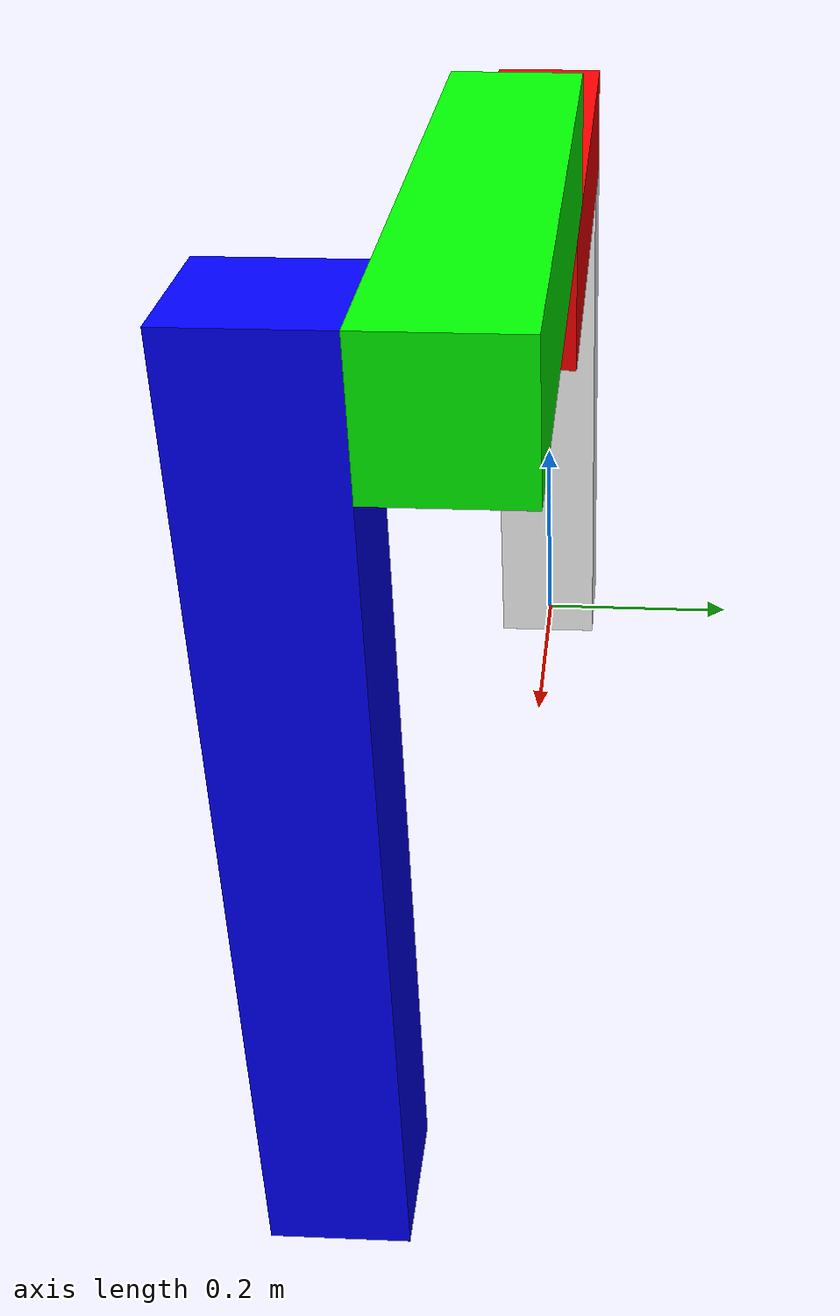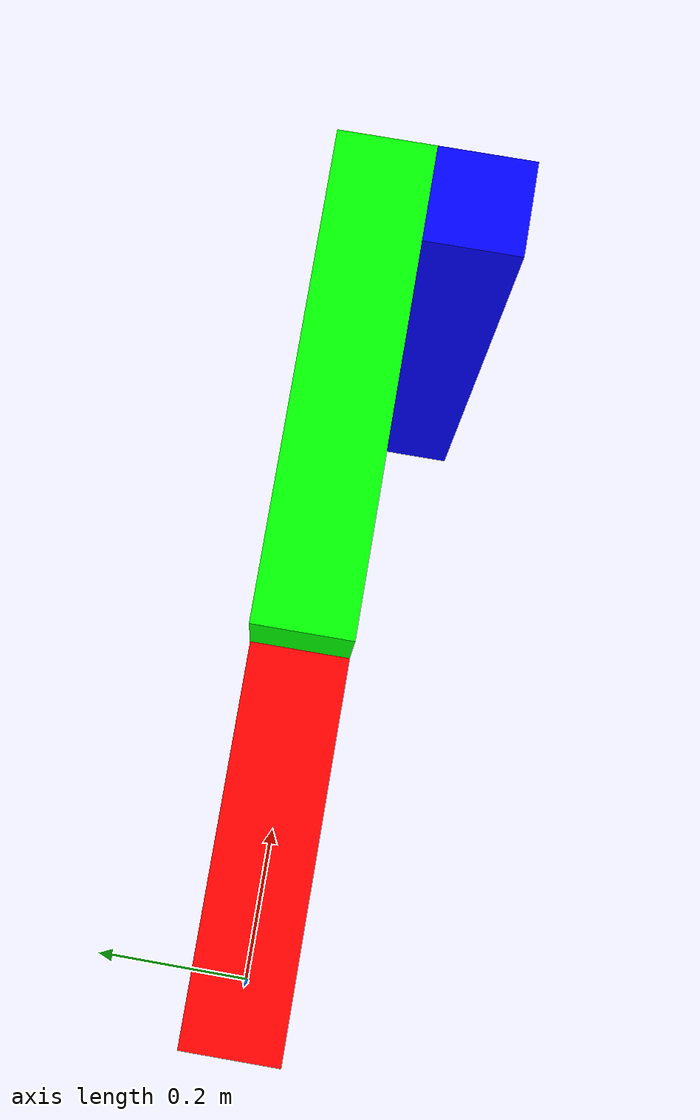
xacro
<?xml version="1.0"?>

<robot xmlns:xacro="http://www.ros.org/wiki/xacro" name="manipulator">

    <!-- VARIABLE DEFINITIONS -->
    <xacro:property name="link_0_length" value="0.5"/>
    <xacro:property name="link_1_length" value="0.5"/>
    <xacro:property name="link_2_length" value="0.5"/>
    <xacro:property name="link_3_length" value="${link_0_length + 2*link_width}"/>
    <xacro:property name="link_width" value="0.1"/>
    <xacro:property name="half_link_width" value="${link_width/2}"/>

    <!-- BASE LINK -->
    <link name="base_0"></link>

    <joint name="base_joint_0" type="fixed">
        <parent link="base_0"/>
        <child link="base_1"/>
    </joint>

    <link name="base_1">
        <visual name="base_1">
            <origin xyz="0.0 0.0 ${link_0_length/2}" rpy="0.0 0.0 0.0"/>
            <geometry>
                <box size="${link_width} ${link_width} ${link_0_length}"/>
            </geometry>
            <material name="white">
                <color rgba="1.0 1.0 1.0 1.0"/>
                <texture filename=""/>
            </material>
        </visual>
        <collision>
            <origin xyz="0.0 0.0 ${link_0_length/2}" rpy="0.0 0.0 0.0"/>
            <geometry>
                <box size="${link_width} ${link_width} ${link_0_length}"/>
            </geometry>
        </collision>
    </link>

    <joint name="joint_0" type="revolute">
        <origin xyz="0.0 0.0 ${link_0_length}" rpy="0.0 0.0 0.0"/>
        <parent link="base_1"/>
        <child link="link_1"/>
        <axis xyz="0.0 0.0 1.0"/>
        <limit lower="0.0" upper="0.0" effort="0.0" velocity="0.0"/>
    </joint>

    <!-- LINK 1 -->
    <link name="link_1">
        <inertial>
            <origin xyz="${(link_1_length/2) - half_link_width} 0.0 ${half_link_width}" rpy="0.0 0.0 0.0"/>
            <mass value="1.0"/>
            <inertia ixx="0.001" ixy="0" ixz="0" iyy="0.001" iyz="0" izz="0.001"/>
        </inertial>
        <visual name="link_1">
            <origin xyz="${(link_1_length/2) - half_link_width} 0.0 ${half_link_width}" rpy="0.0 0.0 0.0"/>
            <geometry>
                <box size="${link_1_length} ${link_width} ${link_width}"/>
            </geometry>
            <material name="red">
                <color rgba="1.0 0.0 0.0 1.0"/>
                <texture filename=""/>
            </material>
        </visual>
        <collision>
            <origin xyz="${(link_1_length/2) - half_link_width} 0.0 ${half_link_width}" rpy="0.0 0.0 0.0"/>
            <geometry>
                <box size="${link_1_length} ${link_width} ${link_width}"/>
            </geometry>
        </collision>
    </link>

    <joint name="joint_1" type="revolute">
        <origin xyz="${link_1_length - 2*half_link_width} 0.0 ${half_link_width}" rpy="0.0 0.0 0.0"/>
        <parent link="link_1"/>
        <child link="link_2"/>
        <axis xyz="0.0 0.0 1.0"/>
        <limit lower="0.0" upper="0.0" effort="0.0" velocity="0.0"/>
    </joint>

    <!-- LINK 2 -->
    <link name="link_2">
        <inertial>
            <origin xyz="${(link_2_length/2) - half_link_width} 0.0 ${link_width}" rpy="0.0 0.0 0.0"/>
            <mass value="1.0"/>
            <inertia ixx="0.001" ixy="0" ixz="0" iyy="0.001" iyz="0" izz="0.001"/>
        </inertial>
        <visual name="link_2">
            <origin xyz="${(link_2_length/2) - half_link_width} 0.0 ${link_width}" rpy="0.0 0.0 0.0"/>
            <geometry>
                <box size="${link_2_length} ${link_width} ${link_width}"/>
            </geometry>
            <material name="green">
                <color rgba="0.0 1.0 0.0 1.0"/>
                <texture filename=""/>
            </material>
        </visual>
        <collision>
            <origin xyz="${(link_2_length/2) - half_link_width} 0.0 ${link_width}" rpy="0.0 0.0 0.0"/>
            <geometry>s
                <box size="${link_2_length} ${link_width} ${link_width}"/>
            </geometry>
        </collision>
    </link>

    <joint name="joint_2" type="revolute">
        <origin xyz="${link_2_length - 2*half_link_width} ${-half_link_width} ${link_width}" rpy="${pi/2} 0.0 0.0"/>
        <parent link="link_2"/>
        <child link="link_3"/>
        <axis xyz="0.0 0.0 1.0"/>
        <limit lower="0.0" upper="0.0" effort="0.0" velocity="0.0"/>
    </joint>

    <!-- LINK 3 -->
    <link name="link_3">
        <inertial>
            <origin xyz=" 0.0 ${-(link_3_length/2) + half_link_width} ${half_link_width}" rpy="0.0 0.0 ${pi/2}"/>
            <mass value="1.0"/>
            <inertia ixx="0.001" ixy="0" ixz="0" iyy="0.001" iyz="0" izz="0.001"/>
        </inertial>
        <visual name="link_3">
            <origin xyz=" 0.0 ${-(link_3_length/2) + half_link_width} ${half_link_width}" rpy="0.0 0.0 ${pi/2}"/>
            <geometry>
                <box size="${link_3_length} ${link_width} ${link_width}"/>
            </geometry>
            <material name="blue">
                <color rgba="0.0 0.0 1.0 1.0"/>
                <texture filename=""/>
            </material>
        </visual>
        <collision>
            <origin xyz=" 0.0 ${-(link_3_length/2) + half_link_width} ${half_link_width}" rpy="0.0 0.0 ${pi/2}"/>
            <geometry>
                <box size="${link_3_length} ${link_width} ${link_width}"/>
            </geometry>
        </collision>
    </link>

    <!-- END EFFECTOR -->
</robot>
